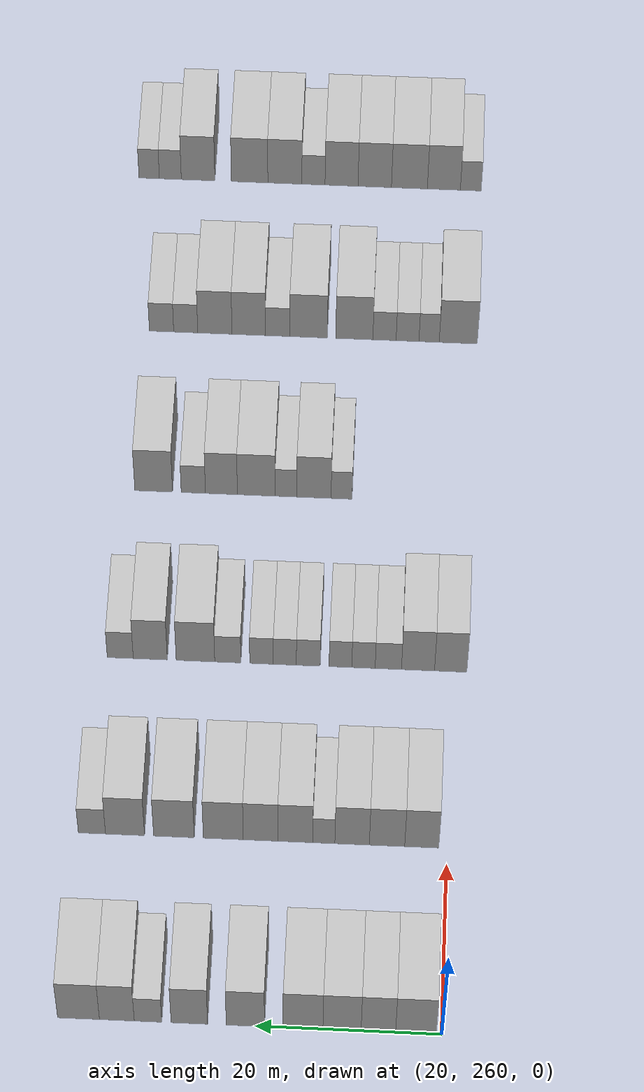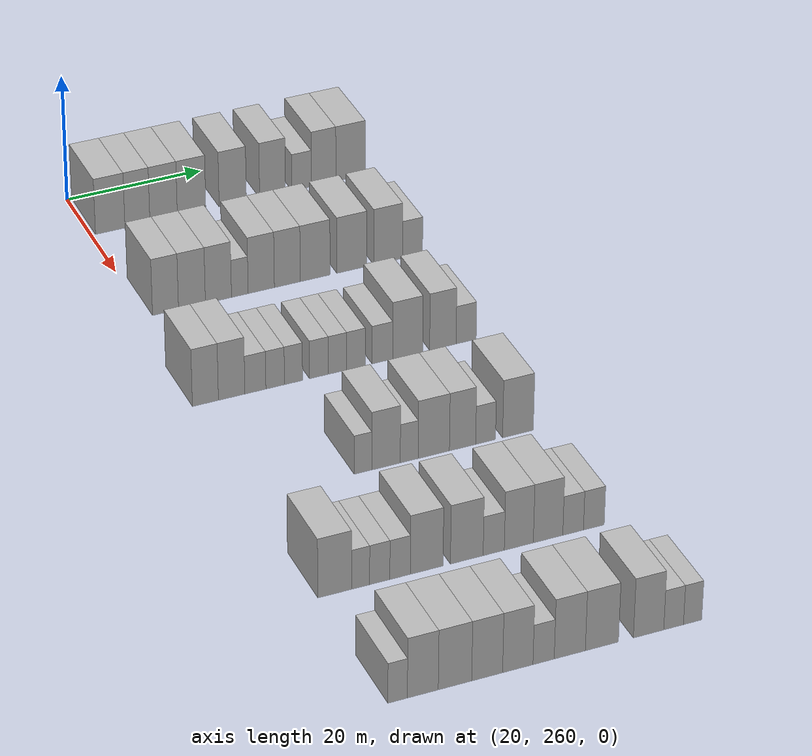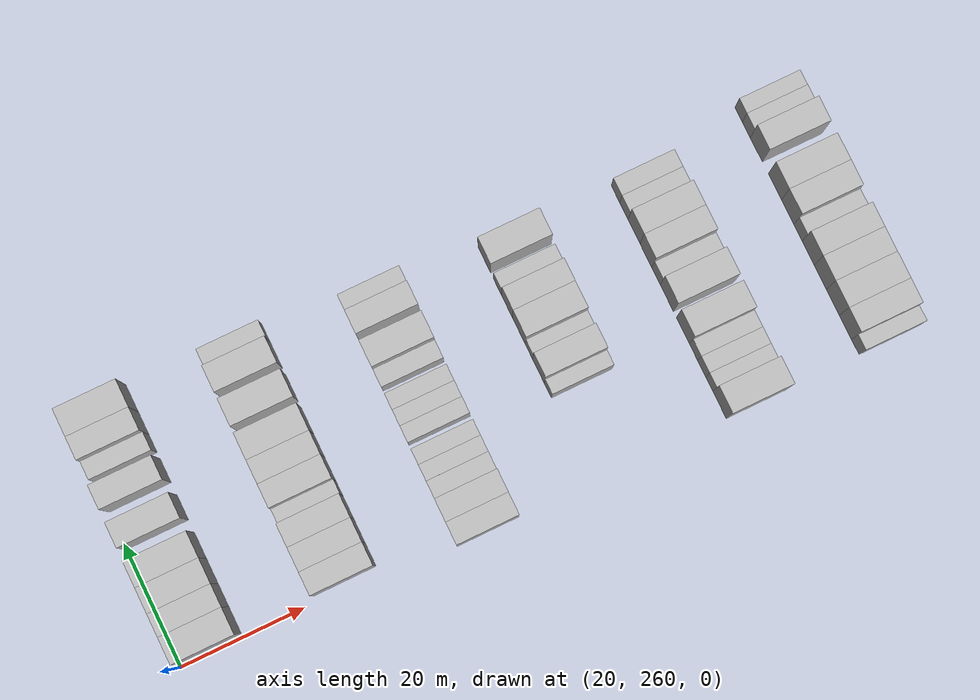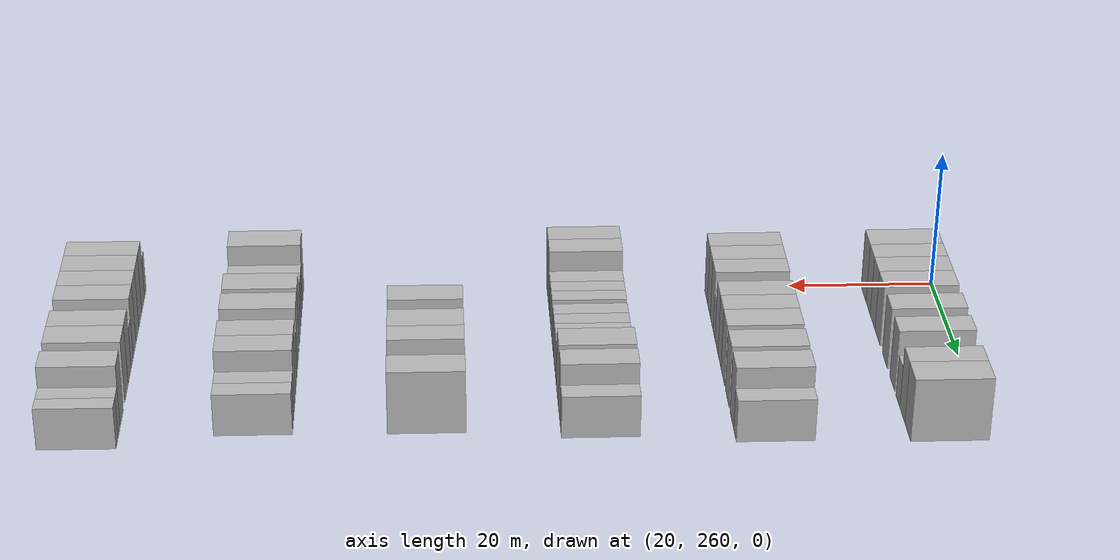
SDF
<sdf version="1.6">
 <world name="default">
  <model name="building_161">
   <static>1</static>
   <pose>25.0000 262.7971 0 0.000000 0.000000 0.000000</pose>
   <link name="link">
    <pose>0 0 4.50 0 0 0</pose>
    <collision name="collision"><geometry><box><size>10.0000 4.3551 9.0000</size></box></geometry></collision>
    <visual name="visual">
     <cast_shadows>0</cast_shadows>
     <geometry><box><size>10.0000 4.3551 9.0000</size></box></geometry>
     <material>
      <script>
       <uri>model://HANNAS_wall/materials/scripts</uri>
       <uri>model://HANNAS_wall/materials/textures</uri>
       <name>vrc/HANNAS_wall</name>
      </script>
     </material>
    </visual>
   </link>
  </model>
  <model name="building_162">
   <static>1</static>
   <pose>25.0000 266.8233 0 0.000000 0.000000 0.000000</pose>
   <link name="link">
    <pose>0 0 4.50 0 0 0</pose>
    <collision name="collision"><geometry><box><size>10.0000 3.6974 9.0000</size></box></geometry></collision>
    <visual name="visual">
     <cast_shadows>0</cast_shadows>
     <geometry><box><size>10.0000 3.6974 9.0000</size></box></geometry>
     <material>
      <script>
       <uri>model://HANNAS_wall/materials/scripts</uri>
       <uri>model://HANNAS_wall/materials/textures</uri>
       <name>vrc/HANNAS_wall</name>
      </script>
     </material>
    </visual>
   </link>
  </model>
  <model name="building_163">
   <static>1</static>
   <pose>25.0000 270.7152 0 0.000000 0.000000 0.000000</pose>
   <link name="link">
    <pose>0 0 4.50 0 0 0</pose>
    <collision name="collision"><geometry><box><size>10.0000 4.0863 9.0000</size></box></geometry></collision>
    <visual name="visual">
     <cast_shadows>0</cast_shadows>
     <geometry><box><size>10.0000 4.0863 9.0000</size></box></geometry>
     <material>
      <script>
       <uri>model://HANNAS_wall/materials/scripts</uri>
       <uri>model://HANNAS_wall/materials/textures</uri>
       <name>vrc/HANNAS_wall</name>
      </script>
     </material>
    </visual>
   </link>
  </model>
  <model name="building_164">
   <static>1</static>
   <pose>25.0000 274.8912 0 0.000000 0.000000 0.000000</pose>
   <link name="link">
    <pose>0 0 4.50 0 0 0</pose>
    <collision name="collision"><geometry><box><size>10.0000 4.2657 9.0000</size></box></geometry></collision>
    <visual name="visual">
     <cast_shadows>0</cast_shadows>
     <geometry><box><size>10.0000 4.2657 9.0000</size></box></geometry>
     <material>
      <script>
       <uri>model://HANNAS_wall/materials/scripts</uri>
       <uri>model://HANNAS_wall/materials/textures</uri>
       <name>vrc/HANNAS_wall</name>
      </script>
     </material>
    </visual>
   </link>
  </model>
  <model name="building_165">
   <static>1</static>
   <pose>25.0000 281.0748 0 0.000000 0.000000 0.000000</pose>
   <link name="link">
    <pose>0 0 4.50 0 0 0</pose>
    <collision name="collision"><geometry><box><size>10.0000 4.1015 9.0000</size></box></geometry></collision>
    <visual name="visual">
     <cast_shadows>0</cast_shadows>
     <geometry><box><size>10.0000 4.1015 9.0000</size></box></geometry>
     <material>
      <script>
       <uri>model://HANNAS_wall/materials/scripts</uri>
       <uri>model://HANNAS_wall/materials/textures</uri>
       <name>vrc/HANNAS_wall</name>
      </script>
     </material>
    </visual>
   </link>
  </model>
  <model name="building_166">
   <static>1</static>
   <pose>25.0000 287.0848 0 0.000000 0.000000 0.000000</pose>
   <link name="link">
    <pose>0 0 4.50 0 0 0</pose>
    <collision name="collision"><geometry><box><size>10.0000 3.9186 9.0000</size></box></geometry></collision>
    <visual name="visual">
     <cast_shadows>0</cast_shadows>
     <geometry><box><size>10.0000 3.9186 9.0000</size></box></geometry>
     <material>
      <script>
       <uri>model://HANNAS_wall/materials/scripts</uri>
       <uri>model://HANNAS_wall/materials/textures</uri>
       <name>vrc/HANNAS_wall</name>
      </script>
     </material>
    </visual>
   </link>
  </model>
  <model name="building_167">
   <static>1</static>
   <pose>25.0000 291.5244 0 0.000000 0.000000 0.000000</pose>
   <link name="link">
    <pose>0 0 3.00 0 0 0</pose>
    <collision name="collision"><geometry><box><size>10.0000 2.9605 6.0000</size></box></geometry></collision>
    <visual name="visual">
     <cast_shadows>0</cast_shadows>
     <geometry><box><size>10.0000 2.9605 6.0000</size></box></geometry>
     <material>
      <script>
       <uri>model://HANNAS_wall/materials/scripts</uri>
       <uri>model://HANNAS_wall/materials/textures</uri>
       <name>vrc/HANNAS_wall</name>
      </script>
     </material>
    </visual>
   </link>
  </model>
  <model name="building_168">
   <static>1</static>
   <pose>25.0000 294.8757 0 0.000000 0.000000 0.000000</pose>
   <link name="link">
    <pose>0 0 4.50 0 0 0</pose>
    <collision name="collision"><geometry><box><size>10.0000 3.7421 9.0000</size></box></geometry></collision>
    <visual name="visual">
     <cast_shadows>0</cast_shadows>
     <geometry><box><size>10.0000 3.7421 9.0000</size></box></geometry>
     <material>
      <script>
       <uri>model://HANNAS_wall/materials/scripts</uri>
       <uri>model://HANNAS_wall/materials/textures</uri>
       <name>vrc/HANNAS_wall</name>
      </script>
     </material>
    </visual>
   </link>
  </model>
  <model name="building_169">
   <static>1</static>
   <pose>25.0000 298.9964 0 0.000000 0.000000 0.000000</pose>
   <link name="link">
    <pose>0 0 4.50 0 0 0</pose>
    <collision name="collision"><geometry><box><size>10.0000 4.4993 9.0000</size></box></geometry></collision>
    <visual name="visual">
     <cast_shadows>0</cast_shadows>
     <geometry><box><size>10.0000 4.4993 9.0000</size></box></geometry>
     <material>
      <script>
       <uri>model://HANNAS_wall/materials/scripts</uri>
       <uri>model://HANNAS_wall/materials/textures</uri>
       <name>vrc/HANNAS_wall</name>
      </script>
     </material>
    </visual>
   </link>
  </model>
  <model name="building_347">
   <static>1</static>
   <pose>47.0000 262.8143 0 0.000000 0.000000 0.000000</pose>
   <link name="link">
    <pose>0 0 4.50 0 0 0</pose>
    <collision name="collision"><geometry><box><size>10.0000 3.7421 9.0000</size></box></geometry></collision>
    <visual name="visual">
     <cast_shadows>0</cast_shadows>
     <geometry><box><size>10.0000 3.7421 9.0000</size></box></geometry>
     <material>
      <script>
       <uri>model://HANNAS_wall/materials/scripts</uri>
       <uri>model://HANNAS_wall/materials/textures</uri>
       <name>vrc/HANNAS_wall</name>
      </script>
     </material>
    </visual>
   </link>
  </model>
  <model name="building_348">
   <static>1</static>
   <pose>47.0000 266.6300 0 0.000000 0.000000 0.000000</pose>
   <link name="link">
    <pose>0 0 4.50 0 0 0</pose>
    <collision name="collision"><geometry><box><size>10.0000 3.8894 9.0000</size></box></geometry></collision>
    <visual name="visual">
     <cast_shadows>0</cast_shadows>
     <geometry><box><size>10.0000 3.8894 9.0000</size></box></geometry>
     <material>
      <script>
       <uri>model://HANNAS_wall/materials/scripts</uri>
       <uri>model://HANNAS_wall/materials/textures</uri>
       <name>vrc/HANNAS_wall</name>
      </script>
     </material>
    </visual>
   </link>
  </model>
  <model name="building_349">
   <static>1</static>
   <pose>47.0000 270.4692 0 0.000000 0.000000 0.000000</pose>
   <link name="link">
    <pose>0 0 4.50 0 0 0</pose>
    <collision name="collision"><geometry><box><size>10.0000 3.7890 9.0000</size></box></geometry></collision>
    <visual name="visual">
     <cast_shadows>0</cast_shadows>
     <geometry><box><size>10.0000 3.7890 9.0000</size></box></geometry>
     <material>
      <script>
       <uri>model://HANNAS_wall/materials/scripts</uri>
       <uri>model://HANNAS_wall/materials/textures</uri>
       <name>vrc/HANNAS_wall</name>
      </script>
     </material>
    </visual>
   </link>
  </model>
  <model name="building_350">
   <static>1</static>
   <pose>47.0000 273.5783 0 0.000000 0.000000 0.000000</pose>
   <link name="link">
    <pose>0 0 3.00 0 0 0</pose>
    <collision name="collision"><geometry><box><size>10.0000 2.4292 6.0000</size></box></geometry></collision>
    <visual name="visual">
     <cast_shadows>0</cast_shadows>
     <geometry><box><size>10.0000 2.4292 6.0000</size></box></geometry>
     <material>
      <script>
       <uri>model://HANNAS_wall/materials/scripts</uri>
       <uri>model://HANNAS_wall/materials/textures</uri>
       <name>vrc/HANNAS_wall</name>
      </script>
     </material>
    </visual>
   </link>
  </model>
  <model name="building_351">
   <static>1</static>
   <pose>47.0000 276.7128 0 0.000000 0.000000 0.000000</pose>
   <link name="link">
    <pose>0 0 4.50 0 0 0</pose>
    <collision name="collision"><geometry><box><size>10.0000 3.8400 9.0000</size></box></geometry></collision>
    <visual name="visual">
     <cast_shadows>0</cast_shadows>
     <geometry><box><size>10.0000 3.8400 9.0000</size></box></geometry>
     <material>
      <script>
       <uri>model://HANNAS_wall/materials/scripts</uri>
       <uri>model://HANNAS_wall/materials/textures</uri>
       <name>vrc/HANNAS_wall</name>
      </script>
     </material>
    </visual>
   </link>
  </model>
  <model name="building_352">
   <static>1</static>
   <pose>47.0000 280.5373 0 0.000000 0.000000 0.000000</pose>
   <link name="link">
    <pose>0 0 4.50 0 0 0</pose>
    <collision name="collision"><geometry><box><size>10.0000 3.8090 9.0000</size></box></geometry></collision>
    <visual name="visual">
     <cast_shadows>0</cast_shadows>
     <geometry><box><size>10.0000 3.8090 9.0000</size></box></geometry>
     <material>
      <script>
       <uri>model://HANNAS_wall/materials/scripts</uri>
       <uri>model://HANNAS_wall/materials/textures</uri>
       <name>vrc/HANNAS_wall</name>
      </script>
     </material>
    </visual>
   </link>
  </model>
  <model name="building_353">
   <static>1</static>
   <pose>47.0000 284.6387 0 0.000000 0.000000 0.000000</pose>
   <link name="link">
    <pose>0 0 4.50 0 0 0</pose>
    <collision name="collision"><geometry><box><size>10.0000 4.3938 9.0000</size></box></geometry></collision>
    <visual name="visual">
     <cast_shadows>0</cast_shadows>
     <geometry><box><size>10.0000 4.3938 9.0000</size></box></geometry>
     <material>
      <script>
       <uri>model://HANNAS_wall/materials/scripts</uri>
       <uri>model://HANNAS_wall/materials/textures</uri>
       <name>vrc/HANNAS_wall</name>
      </script>
     </material>
    </visual>
   </link>
  </model>
  <model name="building_354">
   <static>1</static>
   <pose>47.0000 290.0744 0 0.000000 0.000000 0.000000</pose>
   <link name="link">
    <pose>0 0 4.50 0 0 0</pose>
    <collision name="collision"><geometry><box><size>10.0000 4.4776 9.0000</size></box></geometry></collision>
    <visual name="visual">
     <cast_shadows>0</cast_shadows>
     <geometry><box><size>10.0000 4.4776 9.0000</size></box></geometry>
     <material>
      <script>
       <uri>model://HANNAS_wall/materials/scripts</uri>
       <uri>model://HANNAS_wall/materials/textures</uri>
       <name>vrc/HANNAS_wall</name>
      </script>
     </material>
    </visual>
   </link>
  </model>
  <model name="building_355">
   <static>1</static>
   <pose>47.0000 295.4655 0 0.000000 0.000000 0.000000</pose>
   <link name="link">
    <pose>0 0 4.50 0 0 0</pose>
    <collision name="collision"><geometry><box><size>10.0000 4.3046 9.0000</size></box></geometry></collision>
    <visual name="visual">
     <cast_shadows>0</cast_shadows>
     <geometry><box><size>10.0000 4.3046 9.0000</size></box></geometry>
     <material>
      <script>
       <uri>model://HANNAS_wall/materials/scripts</uri>
       <uri>model://HANNAS_wall/materials/textures</uri>
       <name>vrc/HANNAS_wall</name>
      </script>
     </material>
    </visual>
   </link>
  </model>
  <model name="building_356">
   <static>1</static>
   <pose>47.0000 299.1172 0 0.000000 0.000000 0.000000</pose>
   <link name="link">
    <pose>0 0 3.00 0 0 0</pose>
    <collision name="collision"><geometry><box><size>10.0000 2.9988 6.0000</size></box></geometry></collision>
    <visual name="visual">
     <cast_shadows>0</cast_shadows>
     <geometry><box><size>10.0000 2.9988 6.0000</size></box></geometry>
     <material>
      <script>
       <uri>model://HANNAS_wall/materials/scripts</uri>
       <uri>model://HANNAS_wall/materials/textures</uri>
       <name>vrc/HANNAS_wall</name>
      </script>
     </material>
    </visual>
   </link>
  </model>
  <model name="building_536">
   <static>1</static>
   <pose>69.0000 260.1951 0 0.000000 0.000000 0.000000</pose>
   <link name="link">
    <pose>0 0 4.50 0 0 0</pose>
    <collision name="collision"><geometry><box><size>10.0000 3.6393 9.0000</size></box></geometry></collision>
    <visual name="visual">
     <cast_shadows>0</cast_shadows>
     <geometry><box><size>10.0000 3.6393 9.0000</size></box></geometry>
     <material>
      <script>
       <uri>model://HANNAS_wall/materials/scripts</uri>
       <uri>model://HANNAS_wall/materials/textures</uri>
       <name>vrc/HANNAS_wall</name>
      </script>
     </material>
    </visual>
   </link>
  </model>
  <model name="building_537">
   <static>1</static>
   <pose>69.0000 263.8764 0 0.000000 0.000000 0.000000</pose>
   <link name="link">
    <pose>0 0 4.50 0 0 0</pose>
    <collision name="collision"><geometry><box><size>10.0000 3.7233 9.0000</size></box></geometry></collision>
    <visual name="visual">
     <cast_shadows>0</cast_shadows>
     <geometry><box><size>10.0000 3.7233 9.0000</size></box></geometry>
     <material>
      <script>
       <uri>model://HANNAS_wall/materials/scripts</uri>
       <uri>model://HANNAS_wall/materials/textures</uri>
       <name>vrc/HANNAS_wall</name>
      </script>
     </material>
    </visual>
   </link>
  </model>
  <model name="building_538">
   <static>1</static>
   <pose>69.0000 267.2192 0 0.000000 0.000000 0.000000</pose>
   <link name="link">
    <pose>0 0 3.00 0 0 0</pose>
    <collision name="collision"><geometry><box><size>10.0000 2.9623 6.0000</size></box></geometry></collision>
    <visual name="visual">
     <cast_shadows>0</cast_shadows>
     <geometry><box><size>10.0000 2.9623 6.0000</size></box></geometry>
     <material>
      <script>
       <uri>model://HANNAS_wall/materials/scripts</uri>
       <uri>model://HANNAS_wall/materials/textures</uri>
       <name>vrc/HANNAS_wall</name>
      </script>
     </material>
    </visual>
   </link>
  </model>
  <model name="building_539">
   <static>1</static>
   <pose>69.0000 270.0166 0 0.000000 0.000000 0.000000</pose>
   <link name="link">
    <pose>0 0 3.00 0 0 0</pose>
    <collision name="collision"><geometry><box><size>10.0000 2.6324 6.0000</size></box></geometry></collision>
    <visual name="visual">
     <cast_shadows>0</cast_shadows>
     <geometry><box><size>10.0000 2.6324 6.0000</size></box></geometry>
     <material>
      <script>
       <uri>model://HANNAS_wall/materials/scripts</uri>
       <uri>model://HANNAS_wall/materials/textures</uri>
       <name>vrc/HANNAS_wall</name>
      </script>
     </material>
    </visual>
   </link>
  </model>
  <model name="building_540">
   <static>1</static>
   <pose>69.0000 272.6156 0 0.000000 0.000000 0.000000</pose>
   <link name="link">
    <pose>0 0 3.00 0 0 0</pose>
    <collision name="collision"><geometry><box><size>10.0000 2.5657 6.0000</size></box></geometry></collision>
    <visual name="visual">
     <cast_shadows>0</cast_shadows>
     <geometry><box><size>10.0000 2.5657 6.0000</size></box></geometry>
     <material>
      <script>
       <uri>model://HANNAS_wall/materials/scripts</uri>
       <uri>model://HANNAS_wall/materials/textures</uri>
       <name>vrc/HANNAS_wall</name>
      </script>
     </material>
    </visual>
   </link>
  </model>
  <model name="building_541">
   <static>1</static>
   <pose>69.0000 276.2423 0 0.000000 0.000000 0.000000</pose>
   <link name="link">
    <pose>0 0 3.00 0 0 0</pose>
    <collision name="collision"><geometry><box><size>10.0000 2.6877 6.0000</size></box></geometry></collision>
    <visual name="visual">
     <cast_shadows>0</cast_shadows>
     <geometry><box><size>10.0000 2.6877 6.0000</size></box></geometry>
     <material>
      <script>
       <uri>model://HANNAS_wall/materials/scripts</uri>
       <uri>model://HANNAS_wall/materials/textures</uri>
       <name>vrc/HANNAS_wall</name>
      </script>
     </material>
    </visual>
   </link>
  </model>
  <model name="building_542">
   <static>1</static>
   <pose>69.0000 278.8850 0 0.000000 0.000000 0.000000</pose>
   <link name="link">
    <pose>0 0 3.00 0 0 0</pose>
    <collision name="collision"><geometry><box><size>10.0000 2.5975 6.0000</size></box></geometry></collision>
    <visual name="visual">
     <cast_shadows>0</cast_shadows>
     <geometry><box><size>10.0000 2.5975 6.0000</size></box></geometry>
     <material>
      <script>
       <uri>model://HANNAS_wall/materials/scripts</uri>
       <uri>model://HANNAS_wall/materials/textures</uri>
       <name>vrc/HANNAS_wall</name>
      </script>
     </material>
    </visual>
   </link>
  </model>
  <model name="building_543">
   <static>1</static>
   <pose>69.0000 281.5162 0 0.000000 0.000000 0.000000</pose>
   <link name="link">
    <pose>0 0 3.00 0 0 0</pose>
    <collision name="collision"><geometry><box><size>10.0000 2.6649 6.0000</size></box></geometry></collision>
    <visual name="visual">
     <cast_shadows>0</cast_shadows>
     <geometry><box><size>10.0000 2.6649 6.0000</size></box></geometry>
     <material>
      <script>
       <uri>model://HANNAS_wall/materials/scripts</uri>
       <uri>model://HANNAS_wall/materials/textures</uri>
       <name>vrc/HANNAS_wall</name>
      </script>
     </material>
    </visual>
   </link>
  </model>
  <model name="building_544">
   <static>1</static>
   <pose>69.0000 285.3238 0 0.000000 0.000000 0.000000</pose>
   <link name="link">
    <pose>0 0 3.00 0 0 0</pose>
    <collision name="collision"><geometry><box><size>10.0000 2.9504 6.0000</size></box></geometry></collision>
    <visual name="visual">
     <cast_shadows>0</cast_shadows>
     <geometry><box><size>10.0000 2.9504 6.0000</size></box></geometry>
     <material>
      <script>
       <uri>model://HANNAS_wall/materials/scripts</uri>
       <uri>model://HANNAS_wall/materials/textures</uri>
       <name>vrc/HANNAS_wall</name>
      </script>
     </material>
    </visual>
   </link>
  </model>
  <model name="building_545">
   <static>1</static>
   <pose>69.0000 288.9759 0 0.000000 0.000000 0.000000</pose>
   <link name="link">
    <pose>0 0 4.50 0 0 0</pose>
    <collision name="collision"><geometry><box><size>10.0000 4.3538 9.0000</size></box></geometry></collision>
    <visual name="visual">
     <cast_shadows>0</cast_shadows>
     <geometry><box><size>10.0000 4.3538 9.0000</size></box></geometry>
     <material>
      <script>
       <uri>model://HANNAS_wall/materials/scripts</uri>
       <uri>model://HANNAS_wall/materials/textures</uri>
       <name>vrc/HANNAS_wall</name>
      </script>
     </material>
    </visual>
   </link>
  </model>
  <model name="building_546">
   <static>1</static>
   <pose>69.0000 294.0790 0 0.000000 0.000000 0.000000</pose>
   <link name="link">
    <pose>0 0 4.50 0 0 0</pose>
    <collision name="collision"><geometry><box><size>10.0000 3.8526 9.0000</size></box></geometry></collision>
    <visual name="visual">
     <cast_shadows>0</cast_shadows>
     <geometry><box><size>10.0000 3.8526 9.0000</size></box></geometry>
     <material>
      <script>
       <uri>model://HANNAS_wall/materials/scripts</uri>
       <uri>model://HANNAS_wall/materials/textures</uri>
       <name>vrc/HANNAS_wall</name>
      </script>
     </material>
    </visual>
   </link>
  </model>
  <model name="building_547">
   <static>1</static>
   <pose>69.0000 297.4744 0 0.000000 0.000000 0.000000</pose>
   <link name="link">
    <pose>0 0 3.00 0 0 0</pose>
    <collision name="collision"><geometry><box><size>10.0000 2.9382 6.0000</size></box></geometry></collision>
    <visual name="visual">
     <cast_shadows>0</cast_shadows>
     <geometry><box><size>10.0000 2.9382 6.0000</size></box></geometry>
     <material>
      <script>
       <uri>model://HANNAS_wall/materials/scripts</uri>
       <uri>model://HANNAS_wall/materials/textures</uri>
       <name>vrc/HANNAS_wall</name>
      </script>
     </material>
    </visual>
   </link>
  </model>
  <model name="building_727">
   <static>1</static>
   <pose>91.0000 273.3491 0 0.000000 0.000000 0.000000</pose>
   <link name="link">
    <pose>0 0 3.00 0 0 0</pose>
    <collision name="collision"><geometry><box><size>10.0000 2.4315 6.0000</size></box></geometry></collision>
    <visual name="visual">
     <cast_shadows>0</cast_shadows>
     <geometry><box><size>10.0000 2.4315 6.0000</size></box></geometry>
     <material>
      <script>
       <uri>model://HANNAS_wall/materials/scripts</uri>
       <uri>model://HANNAS_wall/materials/textures</uri>
       <name>vrc/HANNAS_wall</name>
      </script>
     </material>
    </visual>
   </link>
  </model>
  <model name="building_728">
   <static>1</static>
   <pose>91.0000 276.5462 0 0.000000 0.000000 0.000000</pose>
   <link name="link">
    <pose>0 0 4.50 0 0 0</pose>
    <collision name="collision"><geometry><box><size>10.0000 3.9628 9.0000</size></box></geometry></collision>
    <visual name="visual">
     <cast_shadows>0</cast_shadows>
     <geometry><box><size>10.0000 3.9628 9.0000</size></box></geometry>
     <material>
      <script>
       <uri>model://HANNAS_wall/materials/scripts</uri>
       <uri>model://HANNAS_wall/materials/textures</uri>
       <name>vrc/HANNAS_wall</name>
      </script>
     </material>
    </visual>
   </link>
  </model>
  <model name="building_729">
   <static>1</static>
   <pose>91.0000 279.7735 0 0.000000 0.000000 0.000000</pose>
   <link name="link">
    <pose>0 0 3.00 0 0 0</pose>
    <collision name="collision"><geometry><box><size>10.0000 2.4918 6.0000</size></box></geometry></collision>
    <visual name="visual">
     <cast_shadows>0</cast_shadows>
     <geometry><box><size>10.0000 2.4918 6.0000</size></box></geometry>
     <material>
      <script>
       <uri>model://HANNAS_wall/materials/scripts</uri>
       <uri>model://HANNAS_wall/materials/textures</uri>
       <name>vrc/HANNAS_wall</name>
      </script>
     </material>
    </visual>
   </link>
  </model>
  <model name="building_730">
   <static>1</static>
   <pose>91.0000 283.2093 0 0.000000 0.000000 0.000000</pose>
   <link name="link">
    <pose>0 0 4.50 0 0 0</pose>
    <collision name="collision"><geometry><box><size>10.0000 4.3798 9.0000</size></box></geometry></collision>
    <visual name="visual">
     <cast_shadows>0</cast_shadows>
     <geometry><box><size>10.0000 4.3798 9.0000</size></box></geometry>
     <material>
      <script>
       <uri>model://HANNAS_wall/materials/scripts</uri>
       <uri>model://HANNAS_wall/materials/textures</uri>
       <name>vrc/HANNAS_wall</name>
      </script>
     </material>
    </visual>
   </link>
  </model>
  <model name="building_731">
   <static>1</static>
   <pose>91.0000 287.2468 0 0.000000 0.000000 0.000000</pose>
   <link name="link">
    <pose>0 0 4.50 0 0 0</pose>
    <collision name="collision"><geometry><box><size>10.0000 3.6952 9.0000</size></box></geometry></collision>
    <visual name="visual">
     <cast_shadows>0</cast_shadows>
     <geometry><box><size>10.0000 3.6952 9.0000</size></box></geometry>
     <material>
      <script>
       <uri>model://HANNAS_wall/materials/scripts</uri>
       <uri>model://HANNAS_wall/materials/textures</uri>
       <name>vrc/HANNAS_wall</name>
      </script>
     </material>
    </visual>
   </link>
  </model>
  <model name="building_732">
   <static>1</static>
   <pose>91.0000 290.4986 0 0.000000 0.000000 0.000000</pose>
   <link name="link">
    <pose>0 0 3.00 0 0 0</pose>
    <collision name="collision"><geometry><box><size>10.0000 2.8084 6.0000</size></box></geometry></collision>
    <visual name="visual">
     <cast_shadows>0</cast_shadows>
     <geometry><box><size>10.0000 2.8084 6.0000</size></box></geometry>
     <material>
      <script>
       <uri>model://HANNAS_wall/materials/scripts</uri>
       <uri>model://HANNAS_wall/materials/textures</uri>
       <name>vrc/HANNAS_wall</name>
      </script>
     </material>
    </visual>
   </link>
  </model>
  <model name="building_733">
   <static>1</static>
   <pose>91.0000 295.0848 0 0.000000 0.000000 0.000000</pose>
   <link name="link">
    <pose>0 0 4.50 0 0 0</pose>
    <collision name="collision"><geometry><box><size>10.0000 4.3639 9.0000</size></box></geometry></collision>
    <visual name="visual">
     <cast_shadows>0</cast_shadows>
     <geometry><box><size>10.0000 4.3639 9.0000</size></box></geometry>
     <material>
      <script>
       <uri>model://HANNAS_wall/materials/scripts</uri>
       <uri>model://HANNAS_wall/materials/textures</uri>
       <name>vrc/HANNAS_wall</name>
      </script>
     </material>
    </visual>
   </link>
  </model>
  <model name="building_901">
   <static>1</static>
   <pose>113.0000 260.4113 0 0.000000 0.000000 0.000000</pose>
   <link name="link">
    <pose>0 0 4.50 0 0 0</pose>
    <collision name="collision"><geometry><box><size>10.0000 4.4895 9.0000</size></box></geometry></collision>
    <visual name="visual">
     <cast_shadows>0</cast_shadows>
     <geometry><box><size>10.0000 4.4895 9.0000</size></box></geometry>
     <material>
      <script>
       <uri>model://HANNAS_wall/materials/scripts</uri>
       <uri>model://HANNAS_wall/materials/textures</uri>
       <name>vrc/HANNAS_wall</name>
      </script>
     </material>
    </visual>
   </link>
  </model>
  <model name="building_902">
   <static>1</static>
   <pose>113.0000 263.8571 0 0.000000 0.000000 0.000000</pose>
   <link name="link">
    <pose>0 0 3.00 0 0 0</pose>
    <collision name="collision"><geometry><box><size>10.0000 2.4019 6.0000</size></box></geometry></collision>
    <visual name="visual">
     <cast_shadows>0</cast_shadows>
     <geometry><box><size>10.0000 2.4019 6.0000</size></box></geometry>
     <material>
      <script>
       <uri>model://HANNAS_wall/materials/scripts</uri>
       <uri>model://HANNAS_wall/materials/textures</uri>
       <name>vrc/HANNAS_wall</name>
      </script>
     </material>
    </visual>
   </link>
  </model>
  <model name="building_903">
   <static>1</static>
   <pose>113.0000 266.4075 0 0.000000 0.000000 0.000000</pose>
   <link name="link">
    <pose>0 0 3.00 0 0 0</pose>
    <collision name="collision"><geometry><box><size>10.0000 2.6990 6.0000</size></box></geometry></collision>
    <visual name="visual">
     <cast_shadows>0</cast_shadows>
     <geometry><box><size>10.0000 2.6990 6.0000</size></box></geometry>
     <material>
      <script>
       <uri>model://HANNAS_wall/materials/scripts</uri>
       <uri>model://HANNAS_wall/materials/textures</uri>
       <name>vrc/HANNAS_wall</name>
      </script>
     </material>
    </visual>
   </link>
  </model>
  <model name="building_904">
   <static>1</static>
   <pose>113.0000 269.1327 0 0.000000 0.000000 0.000000</pose>
   <link name="link">
    <pose>0 0 3.00 0 0 0</pose>
    <collision name="collision"><geometry><box><size>10.0000 2.7513 6.0000</size></box></geometry></collision>
    <visual name="visual">
     <cast_shadows>0</cast_shadows>
     <geometry><box><size>10.0000 2.7513 6.0000</size></box></geometry>
     <material>
      <script>
       <uri>model://HANNAS_wall/materials/scripts</uri>
       <uri>model://HANNAS_wall/materials/textures</uri>
       <name>vrc/HANNAS_wall</name>
      </script>
     </material>
    </visual>
   </link>
  </model>
  <model name="building_905">
   <static>1</static>
   <pose>113.0000 272.7066 0 0.000000 0.000000 0.000000</pose>
   <link name="link">
    <pose>0 0 4.50 0 0 0</pose>
    <collision name="collision"><geometry><box><size>10.0000 4.3965 9.0000</size></box></geometry></collision>
    <visual name="visual">
     <cast_shadows>0</cast_shadows>
     <geometry><box><size>10.0000 4.3965 9.0000</size></box></geometry>
     <material>
      <script>
       <uri>model://HANNAS_wall/materials/scripts</uri>
       <uri>model://HANNAS_wall/materials/textures</uri>
       <name>vrc/HANNAS_wall</name>
      </script>
     </material>
    </visual>
   </link>
  </model>
  <model name="building_906">
   <static>1</static>
   <pose>113.0000 278.1227 0 0.000000 0.000000 0.000000</pose>
   <link name="link">
    <pose>0 0 4.50 0 0 0</pose>
    <collision name="collision"><geometry><box><size>10.0000 4.4355 9.0000</size></box></geometry></collision>
    <visual name="visual">
     <cast_shadows>0</cast_shadows>
     <geometry><box><size>10.0000 4.4355 9.0000</size></box></geometry>
     <material>
      <script>
       <uri>model://HANNAS_wall/materials/scripts</uri>
       <uri>model://HANNAS_wall/materials/textures</uri>
       <name>vrc/HANNAS_wall</name>
      </script>
     </material>
    </visual>
   </link>
  </model>
  <model name="building_907">
   <static>1</static>
   <pose>113.0000 281.7814 0 0.000000 0.000000 0.000000</pose>
   <link name="link">
    <pose>0 0 3.00 0 0 0</pose>
    <collision name="collision"><geometry><box><size>10.0000 2.8819 6.0000</size></box></geometry></collision>
    <visual name="visual">
     <cast_shadows>0</cast_shadows>
     <geometry><box><size>10.0000 2.8819 6.0000</size></box></geometry>
     <material>
      <script>
       <uri>model://HANNAS_wall/materials/scripts</uri>
       <uri>model://HANNAS_wall/materials/textures</uri>
       <name>vrc/HANNAS_wall</name>
      </script>
     </material>
    </visual>
   </link>
  </model>
  <model name="building_908">
   <static>1</static>
   <pose>113.0000 285.2105 0 0.000000 0.000000 0.000000</pose>
   <link name="link">
    <pose>0 0 4.50 0 0 0</pose>
    <collision name="collision"><geometry><box><size>10.0000 3.9762 9.0000</size></box></geometry></collision>
    <visual name="visual">
     <cast_shadows>0</cast_shadows>
     <geometry><box><size>10.0000 3.9762 9.0000</size></box></geometry>
     <material>
      <script>
       <uri>model://HANNAS_wall/materials/scripts</uri>
       <uri>model://HANNAS_wall/materials/textures</uri>
       <name>vrc/HANNAS_wall</name>
      </script>
     </material>
    </visual>
   </link>
  </model>
  <model name="building_909">
   <static>1</static>
   <pose>113.0000 289.2256 0 0.000000 0.000000 0.000000</pose>
   <link name="link">
    <pose>0 0 4.50 0 0 0</pose>
    <collision name="collision"><geometry><box><size>10.0000 4.0541 9.0000</size></box></geometry></collision>
    <visual name="visual">
     <cast_shadows>0</cast_shadows>
     <geometry><box><size>10.0000 4.0541 9.0000</size></box></geometry>
     <material>
      <script>
       <uri>model://HANNAS_wall/materials/scripts</uri>
       <uri>model://HANNAS_wall/materials/textures</uri>
       <name>vrc/HANNAS_wall</name>
      </script>
     </material>
    </visual>
   </link>
  </model>
  <model name="building_910">
   <static>1</static>
   <pose>113.0000 292.6809 0 0.000000 0.000000 0.000000</pose>
   <link name="link">
    <pose>0 0 3.00 0 0 0</pose>
    <collision name="collision"><geometry><box><size>10.0000 2.8566 6.0000</size></box></geometry></collision>
    <visual name="visual">
     <cast_shadows>0</cast_shadows>
     <geometry><box><size>10.0000 2.8566 6.0000</size></box></geometry>
     <material>
      <script>
       <uri>model://HANNAS_wall/materials/scripts</uri>
       <uri>model://HANNAS_wall/materials/textures</uri>
       <name>vrc/HANNAS_wall</name>
      </script>
     </material>
    </visual>
   </link>
  </model>
  <model name="building_911">
   <static>1</static>
   <pose>113.0000 295.5473 0 0.000000 0.000000 0.000000</pose>
   <link name="link">
    <pose>0 0 3.00 0 0 0</pose>
    <collision name="collision"><geometry><box><size>10.0000 2.8761 6.0000</size></box></geometry></collision>
    <visual name="visual">
     <cast_shadows>0</cast_shadows>
     <geometry><box><size>10.0000 2.8761 6.0000</size></box></geometry>
     <material>
      <script>
       <uri>model://HANNAS_wall/materials/scripts</uri>
       <uri>model://HANNAS_wall/materials/textures</uri>
       <name>vrc/HANNAS_wall</name>
      </script>
     </material>
    </visual>
   </link>
  </model>
  <model name="building_1091">
   <static>1</static>
   <pose>135.0000 259.4342 0 0.000000 0.000000 0.000000</pose>
   <link name="link">
    <pose>0 0 3.00 0 0 0</pose>
    <collision name="collision"><geometry><box><size>10.0000 2.5178 6.0000</size></box></geometry></collision>
    <visual name="visual">
     <cast_shadows>0</cast_shadows>
     <geometry><box><size>10.0000 2.5178 6.0000</size></box></geometry>
     <material>
      <script>
       <uri>model://HANNAS_wall/materials/scripts</uri>
       <uri>model://HANNAS_wall/materials/textures</uri>
       <name>vrc/HANNAS_wall</name>
      </script>
     </material>
    </visual>
   </link>
  </model>
  <model name="building_1092">
   <static>1</static>
   <pose>135.0000 262.6898 0 0.000000 0.000000 0.000000</pose>
   <link name="link">
    <pose>0 0 4.50 0 0 0</pose>
    <collision name="collision"><geometry><box><size>10.0000 3.9934 9.0000</size></box></geometry></collision>
    <visual name="visual">
     <cast_shadows>0</cast_shadows>
     <geometry><box><size>10.0000 3.9934 9.0000</size></box></geometry>
     <material>
      <script>
       <uri>model://HANNAS_wall/materials/scripts</uri>
       <uri>model://HANNAS_wall/materials/textures</uri>
       <name>vrc/HANNAS_wall</name>
      </script>
     </material>
    </visual>
   </link>
  </model>
  <model name="building_1093">
   <static>1</static>
   <pose>135.0000 266.8602 0 0.000000 0.000000 0.000000</pose>
   <link name="link">
    <pose>0 0 4.50 0 0 0</pose>
    <collision name="collision"><geometry><box><size>10.0000 4.3474 9.0000</size></box></geometry></collision>
    <visual name="visual">
     <cast_shadows>0</cast_shadows>
     <geometry><box><size>10.0000 4.3474 9.0000</size></box></geometry>
     <material>
      <script>
       <uri>model://HANNAS_wall/materials/scripts</uri>
       <uri>model://HANNAS_wall/materials/textures</uri>
       <name>vrc/HANNAS_wall</name>
      </script>
     </material>
    </visual>
   </link>
  </model>
  <model name="building_1094">
   <static>1</static>
   <pose>135.0000 271.0581 0 0.000000 0.000000 0.000000</pose>
   <link name="link">
    <pose>0 0 4.50 0 0 0</pose>
    <collision name="collision"><geometry><box><size>10.0000 4.0483 9.0000</size></box></geometry></collision>
    <visual name="visual">
     <cast_shadows>0</cast_shadows>
     <geometry><box><size>10.0000 4.0483 9.0000</size></box></geometry>
     <material>
      <script>
       <uri>model://HANNAS_wall/materials/scripts</uri>
       <uri>model://HANNAS_wall/materials/textures</uri>
       <name>vrc/HANNAS_wall</name>
      </script>
     </material>
    </visual>
   </link>
  </model>
  <model name="building_1095">
   <static>1</static>
   <pose>135.0000 275.0802 0 0.000000 0.000000 0.000000</pose>
   <link name="link">
    <pose>0 0 4.50 0 0 0</pose>
    <collision name="collision"><geometry><box><size>10.0000 3.9960 9.0000</size></box></geometry></collision>
    <visual name="visual">
     <cast_shadows>0</cast_shadows>
     <geometry><box><size>10.0000 3.9960 9.0000</size></box></geometry>
     <material>
      <script>
       <uri>model://HANNAS_wall/materials/scripts</uri>
       <uri>model://HANNAS_wall/materials/textures</uri>
       <name>vrc/HANNAS_wall</name>
      </script>
     </material>
    </visual>
   </link>
  </model>
  <model name="building_1096">
   <static>1</static>
   <pose>135.0000 278.4827 0 0.000000 0.000000 0.000000</pose>
   <link name="link">
    <pose>0 0 3.00 0 0 0</pose>
    <collision name="collision"><geometry><box><size>10.0000 2.8089 6.0000</size></box></geometry></collision>
    <visual name="visual">
     <cast_shadows>0</cast_shadows>
     <geometry><box><size>10.0000 2.8089 6.0000</size></box></geometry>
     <material>
      <script>
       <uri>model://HANNAS_wall/materials/scripts</uri>
       <uri>model://HANNAS_wall/materials/textures</uri>
       <name>vrc/HANNAS_wall</name>
      </script>
     </material>
    </visual>
   </link>
  </model>
  <model name="building_1097">
   <static>1</static>
   <pose>135.0000 281.9511 0 0.000000 0.000000 0.000000</pose>
   <link name="link">
    <pose>0 0 4.50 0 0 0</pose>
    <collision name="collision"><geometry><box><size>10.0000 4.1279 9.0000</size></box></geometry></collision>
    <visual name="visual">
     <cast_shadows>0</cast_shadows>
     <geometry><box><size>10.0000 4.1279 9.0000</size></box></geometry>
     <material>
      <script>
       <uri>model://HANNAS_wall/materials/scripts</uri>
       <uri>model://HANNAS_wall/materials/textures</uri>
       <name>vrc/HANNAS_wall</name>
      </script>
     </material>
    </visual>
   </link>
  </model>
  <model name="building_1098">
   <static>1</static>
   <pose>135.0000 286.2248 0 0.000000 0.000000 0.000000</pose>
   <link name="link">
    <pose>0 0 4.50 0 0 0</pose>
    <collision name="collision"><geometry><box><size>10.0000 4.4195 9.0000</size></box></geometry></collision>
    <visual name="visual">
     <cast_shadows>0</cast_shadows>
     <geometry><box><size>10.0000 4.4195 9.0000</size></box></geometry>
     <material>
      <script>
       <uri>model://HANNAS_wall/materials/scripts</uri>
       <uri>model://HANNAS_wall/materials/textures</uri>
       <name>vrc/HANNAS_wall</name>
      </script>
     </material>
    </visual>
   </link>
  </model>
  <model name="building_1099">
   <static>1</static>
   <pose>135.0000 292.4772 0 0.000000 0.000000 0.000000</pose>
   <link name="link">
    <pose>0 0 4.50 0 0 0</pose>
    <collision name="collision"><geometry><box><size>10.0000 4.0852 9.0000</size></box></geometry></collision>
    <visual name="visual">
     <cast_shadows>0</cast_shadows>
     <geometry><box><size>10.0000 4.0852 9.0000</size></box></geometry>
     <material>
      <script>
       <uri>model://HANNAS_wall/materials/scripts</uri>
       <uri>model://HANNAS_wall/materials/textures</uri>
       <name>vrc/HANNAS_wall</name>
      </script>
     </material>
    </visual>
   </link>
  </model>
  <model name="building_1100">
   <static>1</static>
   <pose>135.0000 295.8507 0 0.000000 0.000000 0.000000</pose>
   <link name="link">
    <pose>0 0 3.00 0 0 0</pose>
    <collision name="collision"><geometry><box><size>10.0000 2.6618 6.0000</size></box></geometry></collision>
    <visual name="visual">
     <cast_shadows>0</cast_shadows>
     <geometry><box><size>10.0000 2.6618 6.0000</size></box></geometry>
     <material>
      <script>
       <uri>model://HANNAS_wall/materials/scripts</uri>
       <uri>model://HANNAS_wall/materials/textures</uri>
       <name>vrc/HANNAS_wall</name>
      </script>
     </material>
    </visual>
   </link>
  </model>
  <model name="building_1101">
   <static>1</static>
   <pose>135.0000 298.4175 0 0.000000 0.000000 0.000000</pose>
   <link name="link">
    <pose>0 0 3.00 0 0 0</pose>
    <collision name="collision"><geometry><box><size>10.0000 2.4718 6.0000</size></box></geometry></collision>
    <visual name="visual">
     <cast_shadows>0</cast_shadows>
     <geometry><box><size>10.0000 2.4718 6.0000</size></box></geometry>
     <material>
      <script>
       <uri>model://HANNAS_wall/materials/scripts</uri>
       <uri>model://HANNAS_wall/materials/textures</uri>
       <name>vrc/HANNAS_wall</name>
      </script>
     </material>
    </visual>
   </link>
  </model>
 </world>
</sdf>
